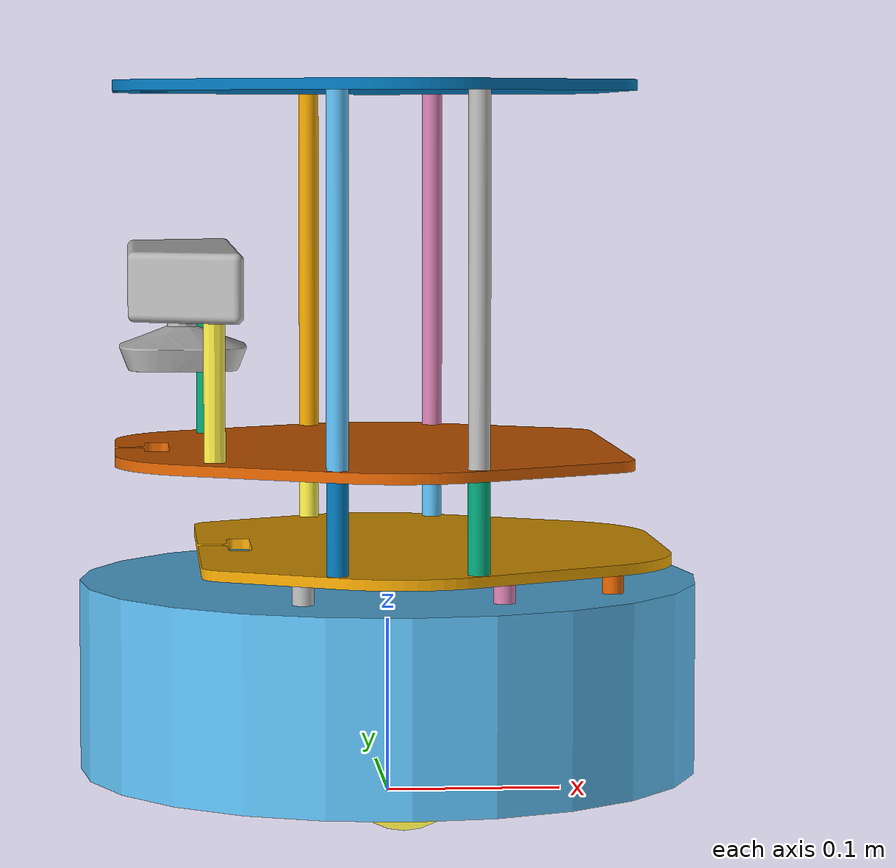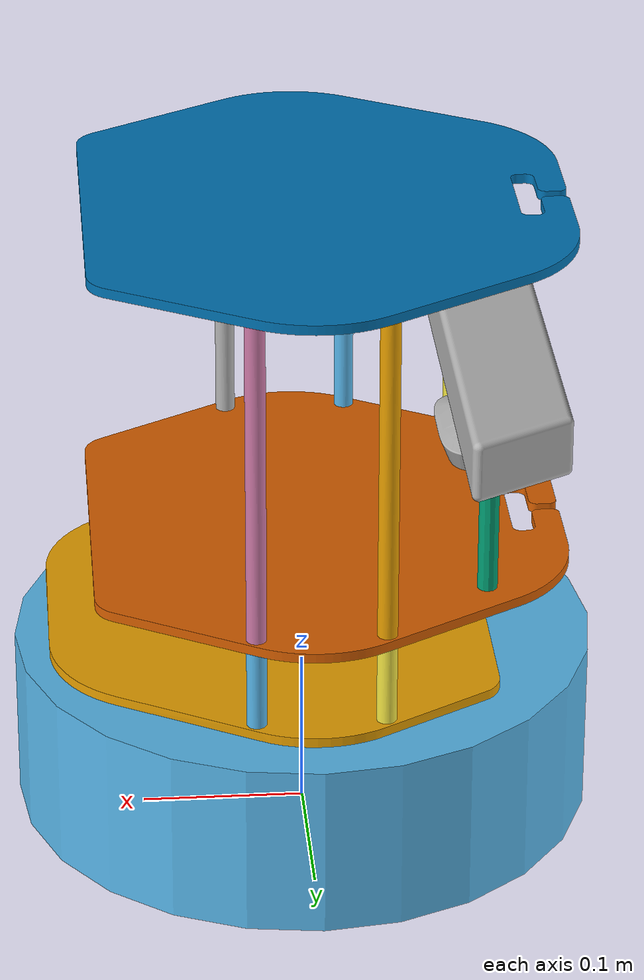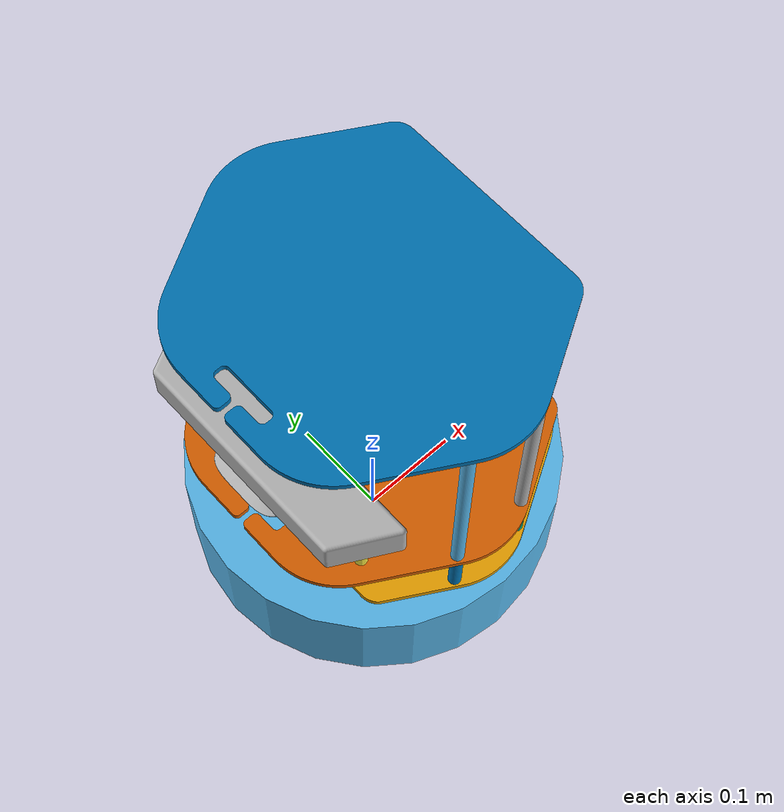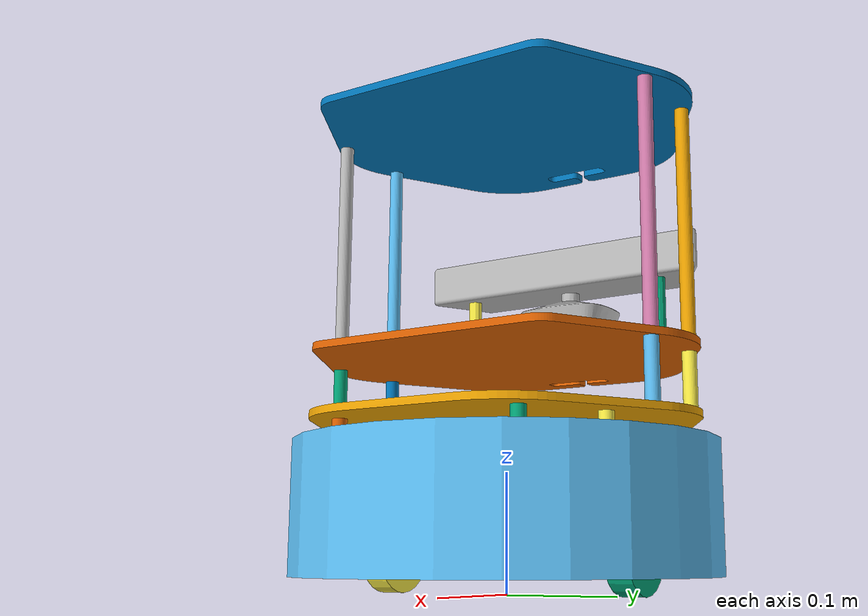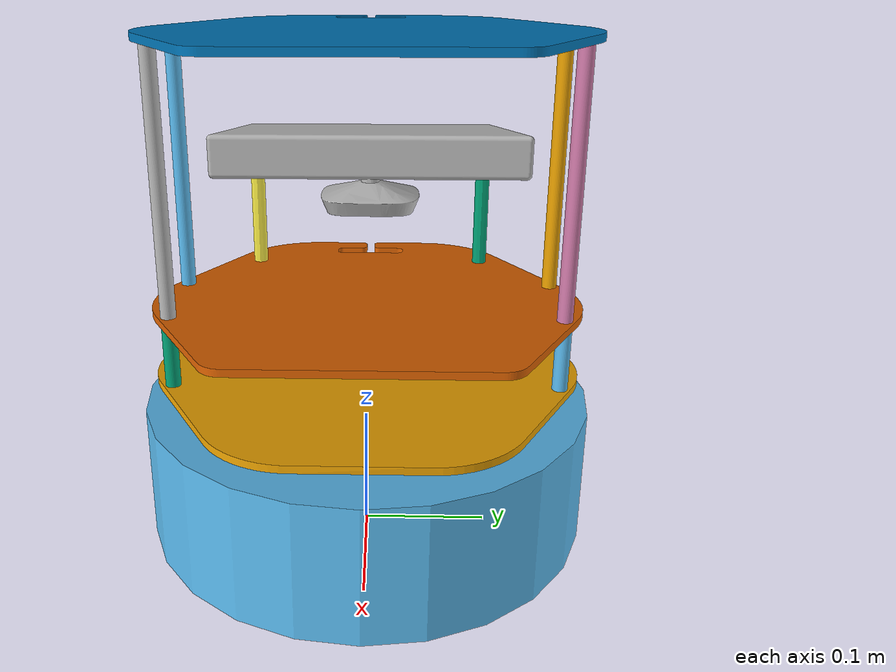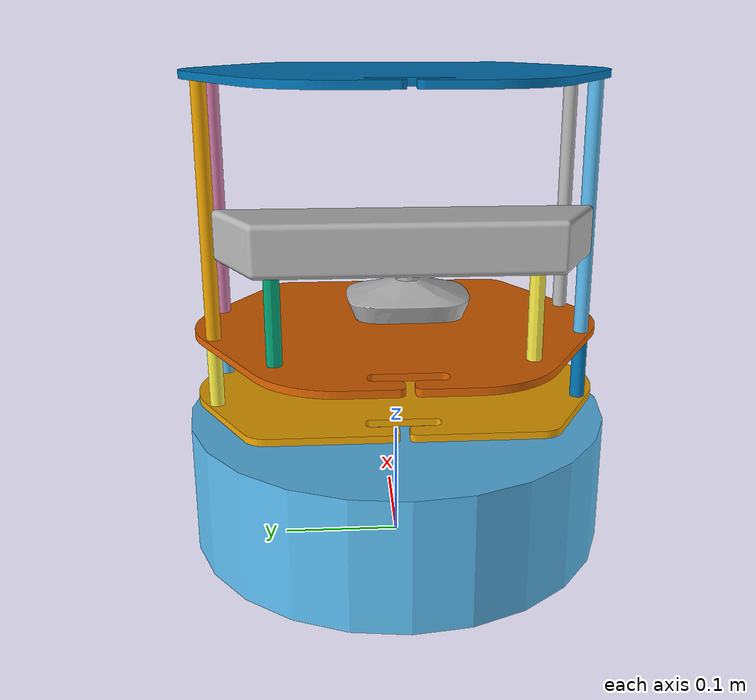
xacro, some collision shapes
<?xml version="1.0"?>
<!--
    - Base      : kobuki
    - Stacks    : hexagons
    - 3d Sensor : kinect
-->
<robot name="turtlebot" xmlns:xacro="http://ros.org/wiki/xacro">

  <xacro:arg name="prefix_frame" default=""/>
  <!--xacro:include filename="$(find turtlebot_description)/urdf/turtlebot_common_library.urdf.xacro" /-->
  <xacro:include filename="$(find turtlebot_description)/urdf/turtlebot_library_multi.urdf.xacro" />
  <!--xacro:include filename="$(find kobuki_description)/urdf/kobuki.urdf.xacro" /-->
  <xacro:include filename="$(find turtlebot_description)/urdf/stacks/hexagons.urdf.xacro"/>
  <xacro:include filename="$(find turtlebot_description)/urdf/sensors/kinect.urdf.xacro"/>

  <kobuki prefix_frame="$(arg prefix_frame)"/>
  <stack_hexagons prefix_frame="$(arg prefix_frame)" parent="$(arg prefix_frame)base_link"/>
  <sensor_kinect prefix_frame="$(arg prefix_frame)" parent="$(arg prefix_frame)base_link"/>
</robot>

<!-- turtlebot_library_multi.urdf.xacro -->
<!--
  The complete turtlebot library of xacros for easy reference
 -->
<robot xmlns:xacro="http://ros.org/wiki/xacro">
  <!-- General -->
  <xacro:include filename="$(find turtlebot_description)/urdf/common_properties.urdf.xacro"/>
  <xacro:include filename="$(find turtlebot_description)/urdf/turtlebot_properties.urdf.xacro"/>
  <!-- Bases -->
  <!--xacro:include filename="$(find create_description)/urdf/create.urdf.xacro"/-->
  <xacro:include filename="$(find turtlebot_description)/urdf/kobuki_multi.urdf.xacro" />
  <!-- Stacks -->
  <xacro:include filename="$(find turtlebot_description)/urdf/stacks/circles.urdf.xacro"/>
  <xacro:include filename="$(find turtlebot_description)/urdf/stacks/hexagons.urdf.xacro"/>
  <xacro:include filename="$(find turtlebot_description)/urdf/stacks/nostacks.urdf.xacro"/>
  <!-- 3D Sensors -->
  <xacro:include filename="$(find turtlebot_description)/urdf/sensors/kinect.urdf.xacro"/>
  <xacro:include filename="$(find turtlebot_description)/urdf/sensors/asus_xtion_pro.urdf.xacro"/>
  <xacro:include filename="$(find turtlebot_description)/urdf/sensors/asus_xtion_pro_offset.urdf.xacro"/>
  <xacro:include filename="$(find turtlebot_description)/urdf/sensors/astra.urdf.xacro"/>
  <!-- 2D Sensors -->
  <xacro:include filename="$(find turtlebot_description)/urdf/sensors/rplidar.urdf.xacro"/>
  <xacro:include filename="$(find turtlebot_description)/urdf/sensors/hokuyo_urg04lx.urdf.xacro"/>
  <!-- Arms -->

</robot>

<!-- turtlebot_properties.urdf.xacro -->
<robot>
  <!--
    These properties must be observed by any machine
    that wants to be defined as a turtlebot. Refer
    to the REP for more details.

    http://www.ros.org/reps/rep-0119.html
   -->

	<property name="cam_px" value="-0.087" />
	<property name="cam_pz" value="0.2870" />
	<property name="cam_or" value="0" />
	<property name="cam_op" value="0" />
	<property name="cam_oy" value="0" />
</robot>

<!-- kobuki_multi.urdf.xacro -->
<robot name="kobuki" xmlns:xacro="http://ros.org/wiki/xacro">
  <xacro:include filename="$(find turtlebot_description)/urdf/common_properties.urdf.xacro"/>
  <xacro:include filename="$(find turtlebot_description)/urdf/kobuki_gazebo.urdf.xacro"/>

  <!-- Kobuki -->
  <xacro:macro name="kobuki" params="prefix_frame">
    <link name="${prefix_frame}base_footprint"/>
    <joint name="${prefix_frame}base_joint" type="fixed">
      <origin xyz="0 0 0.0102" rpy="0 0 0" />
      <parent link="${prefix_frame}base_footprint"/>
      <child link="${prefix_frame}base_link" />
    </joint>
    <link name="${prefix_frame}base_link">
      <visual>
        <geometry>
          <!-- new mesh -->
          <mesh filename="package://kobuki_description/meshes/main_body.dae" />
        </geometry>
        <origin xyz="0.001 0 0.05199" rpy="0 0 0"/>
      </visual>
      <collision name="base">
        <geometry>
          <cylinder length="0.10938" radius="0.178"/>
        </geometry>
        <origin xyz="0.0 0 0.05949" rpy="0 0 0"/>
      </collision>
      <inertial>
        <!-- COM experimentally determined -->
        <origin xyz="0.01 0 0"/>
        <mass value="2.4"/> <!-- 2.4/2.6 kg for small/big battery pack -->
        <inertia ixx="0.019995" ixy="0.0" ixz="0.0"
                 iyy="0.019995" iyz="0.0"
                 izz="0.03675" />
      </inertial>
    </link>

    <joint name="${prefix_frame}wheel_left_joint" type="continuous">
      <parent link="${prefix_frame}base_link"/>
      <child link="${prefix_frame}wheel_left_link"/>
      <origin xyz="0.00 ${0.23/2} 0.0250" rpy="${-M_PI/2} 0 0"/>
      <axis xyz="0 0 1"/>
    </joint>
    <link name="${prefix_frame}wheel_left_link">
      <visual>
        <geometry>
          <mesh filename="package://kobuki_description/meshes/wheel.dae"/>
        </geometry>
        <origin xyz="0 0 0" rpy="0 0 0"/>
      </visual>
      <collision>
        <geometry>
          <cylinder length="0.0206" radius="0.0352"/>
        </geometry>
        <origin rpy="0 0 0" xyz="0 0 0"/>
      </collision>
      <inertial>
        <mass value="0.01" />
        <origin xyz="0 0 0" />
        <inertia ixx="0.001" ixy="0.0" ixz="0.0"
                 iyy="0.001" iyz="0.0"
                 izz="0.001" />
      </inertial>
    </link>

    <joint name="${prefix_frame}wheel_right_joint" type="continuous">
      <parent link="${prefix_frame}base_link"/>
      <child link="${prefix_frame}wheel_right_link"/>
      <origin xyz="0.00 -${0.23/2} 0.0250" rpy="${-M_PI/2} 0 0"/>
      <axis xyz="0 0 1"/>
    </joint>
    <link name="${prefix_frame}wheel_right_link">
      <visual>
        <geometry>
          <mesh filename="package://kobuki_description/meshes/wheel.dae"/>
        </geometry>
        <origin xyz="0 0 0" rpy="0 0 0"/>
      </visual>
      <collision>
        <geometry>
          <cylinder length="0.0206" radius="0.0350"/>
        </geometry>
        <origin rpy="0 0 0" xyz="0 0 0"/>
      </collision>
      <inertial>
        <mass value="0.01" />
        <origin xyz="0 0 0" />
        <inertia ixx="0.001" ixy="0.0" ixz="0.0"
                 iyy="0.001" iyz="0.0"
                 izz="0.001" />
      </inertial>
    </link>

    <joint name="${prefix_frame}caster_front_joint" type="fixed">
      <parent link="${prefix_frame}base_link"/>
      <child link="${prefix_frame}caster_front_link"/>
      <origin xyz="0.115 0.0 0.007" rpy="${-M_PI/2} 0 0"/>
    </joint>
    <link name="${prefix_frame}caster_front_link">
      <collision>
        <geometry>
          <cylinder length="0.0176" radius="0.017"/>
        </geometry>
        <origin rpy="0 0 0" xyz="0 0 0"/>
      </collision>
      <inertial>
        <mass value="0.01" />
        <origin xyz="0 0 0" />
        <inertia ixx="0.001" ixy="0.0" ixz="0.0"
                 iyy="0.001" iyz="0.0"
                 izz="0.001" />
      </inertial>
    </link>

    <joint name="${prefix_frame}caster_back_joint" type="fixed">
      <parent link="${prefix_frame}base_link"/>
      <child link="${prefix_frame}caster_back_link"/>
      <origin xyz="-0.135 0.0 0.009" rpy="${-M_PI/2} 0 0"/>
    </joint>
    <link name="${prefix_frame}caster_back_link">
      <collision>
        <geometry>
          <cylinder length="0.0176" radius="0.017"/>
        </geometry>
        <origin rpy="0 0 0" xyz="0 0 0"/>
      </collision>
      <inertial>
        <mass value="0.01" />
        <origin xyz="0 0 0" />
        <inertia ixx="0.001" ixy="0.0" ixz="0.0"
                 iyy="0.001" iyz="0.0"
                 izz="0.001" />
      </inertial>
    </link>

    <!-- Kobuki's sensors -->
    <joint name="${prefix_frame}gyro_joint" type="fixed">
      <axis xyz="0 1 0"/>
      <origin xyz="0.056 0.062 0.0202" rpy="0 0 0"/>
      <parent link="${prefix_frame}base_link"/>
      <child link="${prefix_frame}gyro_link"/>
    </joint>
    <link name="${prefix_frame}gyro_link">
      <inertial>
        <mass value="0.001"/>
        <origin xyz="0 0 0" rpy="0 0 0"/>
        <inertia ixx="0.0001" ixy="0" ixz="0"
                 iyy="0.000001" iyz="0"
                 izz="0.0001"/>
      </inertial>
    </link>

    <joint name="${prefix_frame}cliff_sensor_left_joint" type="fixed">
      <origin xyz="0.08734 0.13601 0.0214" rpy="0 ${M_PI/2} 0" />
      <parent link="${prefix_frame}base_link"/>
      <child link="${prefix_frame}cliff_sensor_left_link" />
    </joint>
    <link name="${prefix_frame}cliff_sensor_left_link">
      <inertial>
        <mass value="0.0001" />
        <origin xyz="0 0 0" />
        <inertia ixx="0.0001" ixy="0.0" ixz="0.0"
                 iyy="0.0001" iyz="0.0"
                 izz="0.0001" />
      </inertial>
    </link>

    <joint name="${prefix_frame}cliff_sensor_right_joint" type="fixed">
      <origin xyz="0.085 -0.13601 0.0214" rpy="0 ${M_PI/2} 0" />
      <parent link="${prefix_frame}base_link"/>
      <child link="${prefix_frame}cliff_sensor_right_link" />
    </joint>
    <link name="${prefix_frame}cliff_sensor_right_link">
      <inertial>
        <mass value="0.0001" />
        <origin xyz="0 0 0" />
        <inertia ixx="0.0001" ixy="0.0" ixz="0.0"
                 iyy="0.0001" iyz="0.0"
                 izz="0.0001" />
      </inertial>
    </link>

    <joint name="${prefix_frame}cliff_sensor_front_joint" type="fixed">
      <origin xyz="0.156 0.00 0.0214" rpy="0 ${M_PI/2} 0" />
      <parent link="${prefix_frame}base_link"/>
      <child link="${prefix_frame}cliff_sensor_front_link" />
    </joint>
    <link name="${prefix_frame}cliff_sensor_front_link">
      <inertial>
        <mass value="0.0001" />
        <origin xyz="0 0 0" />
        <inertia ixx="0.0001" ixy="0.0" ixz="0.0"
                 iyy="0.0001" iyz="0.0"
                 izz="0.0001" />
      </inertial>
    </link>

    <!-- Kobuki Gazebo simulation details -->
    <xacro:kobuki_sim prefix_frame="${prefix_frame}"/>

  </xacro:macro>

</robot>

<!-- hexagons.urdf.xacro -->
<!--
  Hexagon stacks
 -->
<robot name="stack_hexagons" xmlns:xacro="http://ros.org/wiki/xacro">
  <xacro:include filename="$(find turtlebot_description)/urdf/common_properties.urdf.xacro"/>

  <!-- Xacro properties -->
  <xacro:property name="M_SCALE" value="0.001"/>

  <!-- Xacro macros -->
  <!-- Pole macros -->
  <xacro:macro name="stack_bottom_pole" params="prefix_frame parent number x_loc y_loc z_loc">
    <joint name="${prefix_frame}pole_bottom_${number}_joint" type="fixed">
      <origin xyz="${x_loc} ${y_loc} ${z_loc}" rpy="0 0 0"/>
      <parent link="${parent}"/>
      <child link="${prefix_frame}pole_bottom_${number}_link"/>
    </joint>
    <link name="${prefix_frame}pole_bottom_${number}_link">
      <visual>
        <origin xyz="0 0 0" rpy="0 0 0"/>
        <geometry>
          <mesh filename="package://turtlebot_description/meshes/stacks/hexagons/pole_bottom.dae"/>
        </geometry>
      </visual>
      <collision>
        <origin xyz="0 0 0" rpy="0 0 0"/>
        <geometry>
          <cylinder length="0.0492" radius="0.006"/>
        </geometry>
      </collision>
      <inertial>
        <mass value="0.008"/>
        <origin xyz="0 0 0" rpy="0 0 0"/>
        <inertia ixx="0.000001686" ixy="0.0" ixz="0.0"
                 iyy="0.000001686" iyz="0.0"
                 izz="0.000000144"/>
      </inertial>
    </link>
  </xacro:macro>

  <xacro:macro name="stack_middle_pole" params="prefix_frame parent number x_loc y_loc z_loc">
    <joint name="${prefix_frame}pole_middle_${number}_joint" type="fixed">
      <origin xyz="${x_loc} ${y_loc} ${z_loc}" rpy="0 0 0" />
      <parent link="${parent}"/>
      <child link="${prefix_frame}pole_middle_${number}_link"/>
    </joint>
    <link name="${prefix_frame}pole_middle_${number}_link">
      <visual>
        <origin xyz="0 0 0" rpy="0 ${M_PI} 0"/>
        <geometry>
          <mesh filename="package://turtlebot_description/meshes/stacks/hexagons/pole_middle.dae"/>
        </geometry>
      </visual>
      <collision>
        <origin xyz="0 0 0" rpy="0 0 0"/>
        <geometry>
          <cylinder length="0.0608" radius="0.006"/>
        </geometry>
      </collision>
      <inertial>
        <mass value="0.012"/>
        <origin xyz="0 0 0"/>
        <inertia ixx="0.000003805" ixy="0.0" ixz="0.0"
                 iyy="0.000003805" iyz="0.0"
                 izz="0.000000216"/>
      </inertial>
    </link>
  </xacro:macro>

  <xacro:macro name="stack_top_pole" params="prefix_frame parent number x_loc y_loc z_loc">
    <joint name="${prefix_frame}pole_top_${number}_joint" type="fixed">
      <origin xyz="${x_loc} ${y_loc} ${z_loc}" rpy="0 0 0"/>
      <parent link="${parent}"/>
      <child link="${prefix_frame}pole_top_${number}_link"/>
    </joint>
    <link name="${prefix_frame}pole_top_${number}_link">
      <visual>
        <origin xyz=" 0 0 0" rpy="0 0 0"/>
        <geometry>
          <mesh filename="package://turtlebot_description/meshes/stacks/hexagons/pole_top.dae"/>
        </geometry>
      </visual>
      <collision>
        <origin xyz="0 0 0" rpy="0 0 0"/>
        <geometry>
          <cylinder length="0.2032" radius="0.006"/>
        </geometry>
      </collision>
      <inertial>
        <mass value="0.060"/>
        <origin xyz="0 0 0"/>
        <inertia ixx="0.000206991" ixy="0.0" ixz="0.0"
                 iyy="0.000206991" iyz="0.0"
                 izz="0.000001080"/>
      </inertial>
    </link>
  </xacro:macro>

  <xacro:macro name="stack_3d_sensor_pole" params="prefix_frame parent number x_loc y_loc z_loc">
    <joint name="${prefix_frame}pole_kinect_${number}_joint" type="fixed">
      <origin xyz="${x_loc} ${y_loc} ${z_loc}" rpy="0 0 0"/>
      <parent link="${parent}"/>
      <child link="${prefix_frame}pole_kinect_${number}_link"/>
    </joint>
    <link name="${prefix_frame}pole_kinect_${number}_link">
      <visual>
        <origin xyz="0 0 -0.01" rpy="0 0 0"/>
        <geometry>
          <mesh filename="package://turtlebot_description/meshes/sensors/sensor_pole.dae" />
        </geometry>
      </visual>
      <collision>
        <origin xyz="0 0 0" rpy="0 0 0"/>
        <geometry>
          <cylinder length="0.0936" radius="0.006"/>
        </geometry>
      </collision>
      <inertial>
        <mass value="0.020"/>
        <origin xyz="0 0 0"/>
        <inertia ixx="0.000014782" ixy="0.0" ixz="0.0"
                 iyy="0.000014782" iyz="0.0"
                 izz="0.000000360"/>
      </inertial>
    </link>
  </xacro:macro>

  <xacro:macro name="stack_hexagons" params="prefix_frame parent">
    <stack_bottom_pole prefix_frame="${prefix_frame}" parent="${parent}" number="0" x_loc= "0.120" y_loc= "0.082" z_loc="0.1028"/>
    <stack_bottom_pole prefix_frame="${prefix_frame}" parent="${parent}" number="1" x_loc= "0.055" y_loc= "0.120" z_loc="0.1028"/>
    <stack_bottom_pole prefix_frame="${prefix_frame}" parent="${parent}" number="2" x_loc="-0.055" y_loc= "0.120" z_loc="0.1028"/>
    <stack_bottom_pole prefix_frame="${prefix_frame}" parent="${parent}" number="3" x_loc= "0.120" y_loc="-0.082" z_loc="0.1028"/>
    <stack_bottom_pole prefix_frame="${prefix_frame}" parent="${parent}" number="4" x_loc= "0.055" y_loc="-0.120" z_loc="0.1028"/>
    <stack_bottom_pole prefix_frame="${prefix_frame}" parent="${parent}" number="5" x_loc="-0.055" y_loc="-0.120" z_loc="0.1028"/>

    <joint name="${prefix_frame}plate_bottom_joint" type="fixed">
      <origin xyz="0.02364 0.0 0.1306" rpy="0 0 0"/>
      <parent link="${parent}"/>
      <child link="${prefix_frame}plate_bottom_link"/>
    </joint>
    <link name="${prefix_frame}plate_bottom_link">
      <visual>
        <origin xyz="0 0 0" rpy="0 0 0"/>
        <geometry>
          <mesh filename="package://turtlebot_description/meshes/stacks/hexagons/plate_bottom.dae"/>
        </geometry>
      </visual>
      <collision>
        <origin xyz="-0.02364 0 0" rpy="0 0 0"/>
        <geometry>
          <cylinder length="0.006" radius="0.170"/>
        </geometry>
      </collision>
      <inertial>
        <mass value="0.520" />
        <origin xyz="0 0 0" />
        <inertia ixx="0.003328" ixy="0.0" ixz="0.0"
                 iyy="0.003328" iyz="0.0"
                 izz="0.006656" />
      </inertial>
    </link>

    <stack_middle_pole prefix_frame="${prefix_frame}" parent="${parent}" number="0" x_loc= "0.0381" y_loc= "0.1505" z_loc="0.1640"/>
    <stack_middle_pole prefix_frame="${prefix_frame}" parent="${parent}" number="1" x_loc= "0.0381" y_loc="-0.1505" z_loc="0.1640"/>
    <stack_middle_pole prefix_frame="${prefix_frame}" parent="${parent}" number="2" x_loc="-0.0381" y_loc= "0.1505" z_loc="0.1640"/>
    <stack_middle_pole prefix_frame="${prefix_frame}" parent="${parent}" number="3" x_loc="-0.0381" y_loc="-0.1505" z_loc="0.1640"/>

    <joint name="${prefix_frame}plate_middle_joint" type="fixed">
      <origin xyz="-0.01364 0.0 0.1874" rpy="0 0 0"/>
      <parent link="${parent}"/>
      <child link="${prefix_frame}plate_middle_link"/>
    </joint>
    <link name="${prefix_frame}plate_middle_link">
      <visual>
        <origin xyz="0 0 0" rpy="0 0 0"/>
        <geometry>
          <mesh filename="package://turtlebot_description/meshes/stacks/hexagons/plate_middle.dae"/>
        </geometry>
      </visual>
      <collision>
        <origin xyz="0.01364 0.0 0.0" rpy="0 0 0"/>
        <geometry>
          <cylinder length="0.006" radius="0.170"/>
        </geometry>
      </collision>
      <inertial>
        <mass value="0.520" />
        <origin xyz="0 0 0" />
        <inertia ixx="0.003328" ixy="0.0" ixz="0.0"
                 iyy="0.003328" iyz="0.0"
                 izz="0.006656" />
      </inertial>
    </link>

    <stack_top_pole prefix_frame="${prefix_frame}" parent="${parent}" number="0" x_loc= "0.0381" y_loc= "0.1505" z_loc="0.2920"/>
    <stack_top_pole prefix_frame="${prefix_frame}" parent="${parent}" number="1" x_loc= "0.0381" y_loc="-0.1505" z_loc="0.2920"/>
    <stack_top_pole prefix_frame="${prefix_frame}" parent="${parent}" number="2" x_loc="-0.0381" y_loc= "0.1505" z_loc="0.2920"/>
    <stack_top_pole prefix_frame="${prefix_frame}" parent="${parent}" number="3" x_loc="-0.0381" y_loc="-0.1505" z_loc="0.2920"/>
    <stack_3d_sensor_pole prefix_frame="${prefix_frame}" parent="${parent}" number="0" x_loc="-0.1024" y_loc= "0.098" z_loc="0.2372"/>
    <stack_3d_sensor_pole prefix_frame="${prefix_frame}" parent="${parent}" number="1" x_loc="-0.1024" y_loc="-0.098" z_loc="0.2372"/>

    <joint name="${prefix_frame}plate_top_joint" type="fixed">
      <origin xyz="-0.01364 0.0  0.3966" rpy="0 0 0"/>
      <parent link="${parent}"/>
      <child link="${prefix_frame}plate_top_link"/>
    </joint>
    <link name="${prefix_frame}plate_top_link">
      <visual>
        <origin xyz="0 0 0" rpy="0 0 0"/>
        <geometry>
          <mesh filename="package://turtlebot_description/meshes/stacks/hexagons/plate_top.dae"/>
        </geometry>
      </visual>
      <collision>
        <origin xyz="0.01364 0 0" rpy="0 0 0"/>
        <geometry>
          <cylinder length="0.006" radius="0.170"/>
        </geometry>
      </collision>
      <inertial>
        <mass value="0.520"/>
        <origin xyz="0 0 0"/>
        <inertia ixx="0.003328" ixy="0.0" ixz="0.0"
                 iyy="0.003328" iyz="0.0"
                 izz="0.006656" />
      </inertial>
    </link>
  </xacro:macro>
</robot>

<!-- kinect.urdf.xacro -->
<robot name="sensor_kinect" xmlns:xacro="http://ros.org/wiki/xacro">
  <xacro:include filename="$(find turtlebot_description)/urdf/turtlebot_gazebo.urdf.xacro"/>
  <xacro:include filename="$(find turtlebot_description)/urdf/turtlebot_properties.urdf.xacro"/>

  <xacro:property name="kinect_cam_py" value="-0.0125"/>
  <!-- Parameterised in part by the values in turtlebot_properties.urdf.xacro -->
  <xacro:macro name="sensor_kinect" params="prefix_frame parent">
    <joint name="${prefix_frame}camera_rgb_joint" type="fixed">
      <origin xyz="${cam_px} ${kinect_cam_py} ${cam_pz}" rpy="${cam_or} ${cam_op} ${cam_oy}"/>
      <parent link="${parent}"/>
      <child link="${prefix_frame}camera_rgb_frame" />
    </joint>
    <link name="${prefix_frame}camera_rgb_frame"/>

    <joint name="${prefix_frame}camera_rgb_optical_joint" type="fixed">
      <origin xyz="0 0 0" rpy="${-M_PI/2} 0 ${-M_PI/2}" />
      <parent link="${prefix_frame}camera_rgb_frame" />
      <child link="${prefix_frame}camera_rgb_optical_frame" />
    </joint>
    <link name="${prefix_frame}camera_rgb_optical_frame"/>

    <joint name="${prefix_frame}camera_joint" type="fixed">
      <origin xyz="-0.031 ${-kinect_cam_py} -0.016" rpy="0 0 0"/>
      <parent link="${prefix_frame}camera_rgb_frame"/>
      <child link="${prefix_frame}camera_link"/>
    </joint>
      <link name="${prefix_frame}camera_link">
      <visual>
       <origin xyz="0 0 0" rpy="0 0 ${M_PI/2}"/>
        <geometry>
         <mesh filename="package://turtlebot_description/meshes/sensors/kinect.dae"/>
        </geometry>
      </visual>
  	  <collision>
        <origin xyz="0.0 0.0 0.0" rpy="0 0 0"/>
  	    <geometry>
  	      <box size="0.07271 0.27794 0.073"/>
  	    </geometry>
  	  </collision>
      <inertial>
        <mass value="0.564" />
        <origin xyz="0 0 0" />
        <inertia ixx="0.003881243" ixy="0.0" ixz="0.0"
                 iyy="0.000498940" iyz="0.0"
                 izz="0.003879257" />
      </inertial>
    </link>

	<joint name="${prefix_frame}camera_depth_joint" type="fixed">
	  <origin xyz="0 ${2 * -kinect_cam_py} 0" rpy="0 0 0" />
	  <parent link="${prefix_frame}camera_rgb_frame" />
	  <child link="${prefix_frame}camera_depth_frame" />
	</joint>
	<link name="${prefix_frame}camera_depth_frame"/>

	<joint name="${prefix_frame}camera_depth_optical_joint" type="fixed">
	  <origin xyz="0 0 0" rpy="${-M_PI/2} 0 ${-M_PI/2}" />
	  <parent link="${prefix_frame}camera_depth_frame" />
	  <child link="${prefix_frame}camera_depth_optical_frame" />
	</joint>
	<link name="${prefix_frame}camera_depth_optical_frame"/>

	<!-- Kinect sensor for simulation -->
	<turtlebot_sim_3dsensor prefix_frame="${prefix_frame}"/>
  </xacro:macro>
</robot>
